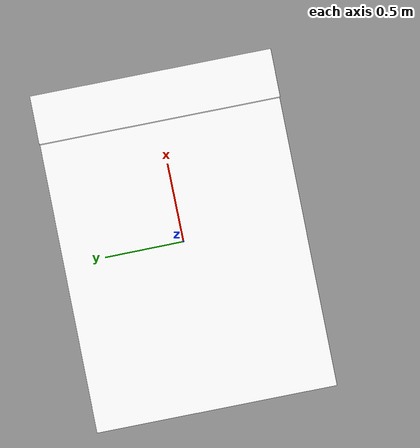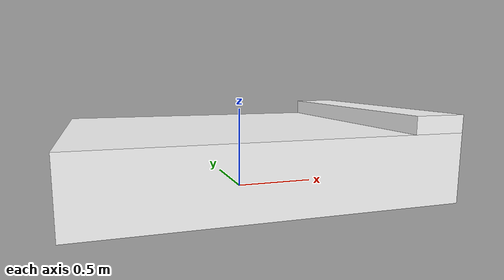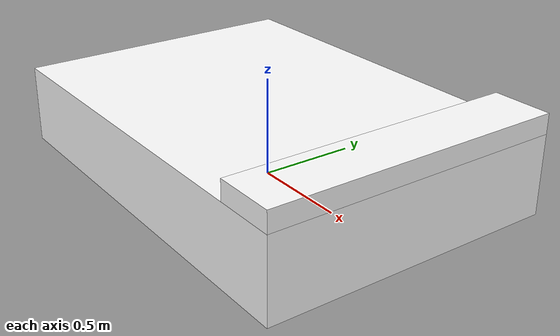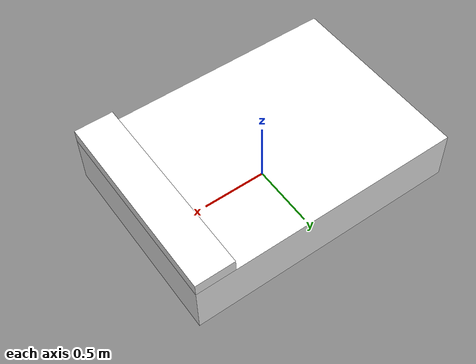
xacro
<?xml version="1.0"?>

<robot name="cama" xmlns:xacro="http://www.ros.org/wiki/xacro">

<xacro:property name="altura" value="0.4" />
<xacro:property name="ancho" value="1.5" />
<xacro:property name="largo" value="2.1" />

<link name="world" />

<joint name="cama" type="floating">
  <parent link="world"/>
  <child link="cama_link"/>
  <origin xyz="0 0 0" rpy="0 0 0" />
</joint>

<link name="cama_link">
  <visual>
    <geometry>
      <box size="${largo} ${ancho} ${altura}" />
    </geometry>
    <origin rpy="0 0 0" xyz="0 0 ${altura/2}" />
    <material name="white">
		<color rgba="1 1 1 1" />
    </material>
  </visual>
  <collision>
    <origin rpy="0 0 0" xyz="0 0 ${altura/2}" />
    <geometry>
      <box size="${largo} ${ancho} ${altura}" />
    </geometry>
  </collision>
  <inertial>
    <origin rpy="0 0 0" xyz="0 0 ${altura/2}" />
    <mass value="50" />
      <inertia ixx="10" ixy="0.0" ixz="0.0" iyy="10" iyz="0.0" izz="10"/>
  </inertial>
</link>

<joint name="almohada" type="fixed">
  <parent link="cama_link"/>
  <child link="almohada_link"/>
  <origin xyz="${(largo/2)-(0.3/2)} 0 ${altura}" rpy="0 0 0" />
</joint>

<link name="almohada_link">
  <visual>
    <geometry>
      <box size="0.3 ${ancho} 0.1" />
    </geometry>
    <origin rpy="0 0 0" xyz="0 0 ${0.1/2}" />
    <material name="white">
		<color rgba="1 1 1 1" />
    </material>
  </visual>
  <collision>
    <origin rpy="0 0 0" xyz="0 0 ${0.1/2}" />
    <geometry>
      <box size="0.3 ${ancho} 0.1" />
    </geometry>
  </collision>
  <inertial>
    <origin rpy="0 0 0" xyz="0 0 ${0.1/2}" />
    <mass value="1" />
      <inertia ixx="0.1" ixy="0.0" ixz="0.0" iyy="0.1" iyz="0.0" izz="0.1"/>
  </inertial>
</link>

<gazebo reference="cama_link">
  <material>Gazebo/White</material>
  <mu1>1</mu1>
  <mu2>1</mu2>
  <selfCollide>true</selfCollide>
  <turnGravityOff>false</turnGravityOff>
</gazebo>

<gazebo reference="almohada_link">
  <material>Gazebo/White</material>
  <mu1>1</mu1>
  <mu2>1</mu2>
  <selfCollide>true</selfCollide>
  <turnGravityOff>false</turnGravityOff>
</gazebo>

</robot>
